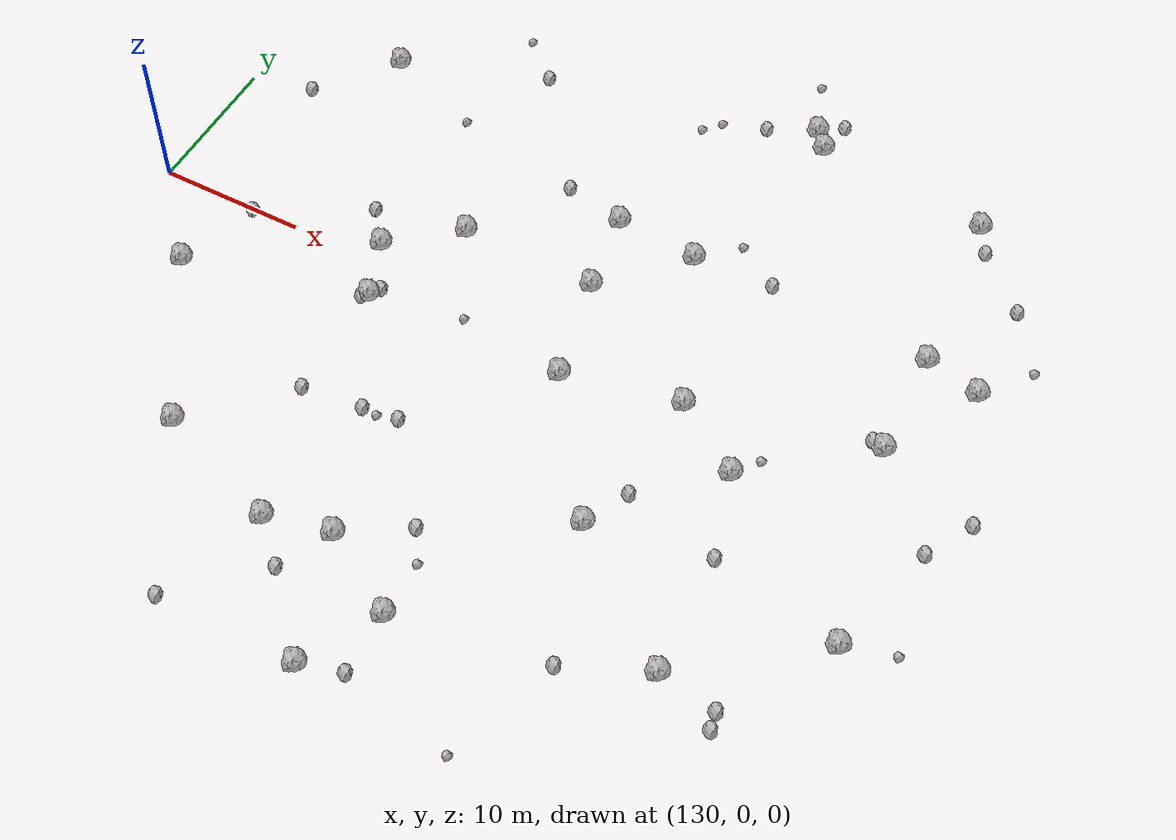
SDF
<sdf version="1.6">
 <world name="default">
  <include><uri>model://sun</uri></include>
  <model name="rock1_4_2">
   <include><uri>model://rock1</uri><pose>160.92388347625945 -2.235057176695552 0.5 0 0 0</pose></include>
  </model>
  <model name="rock1_4_3">
   <include><uri>model://rock1</uri><pose>175.7854021667193 -17.68121353090826 0.5 0 0 0</pose></include>
  </model>
  <model name="rock1_4_4">
   <include><uri>model://rock1</uri><pose>167.36158966789168 22.654782264727643 0.5 0 0 0</pose></include>
  </model>
  <model name="rock1_4_5">
   <include><uri>model://rock1</uri><pose>142.10556732586429 -16.43734119213522 0.5 0 0 0</pose></include>
  </model>
  <model name="rock1_4_6">
   <include><uri>model://rock1</uri><pose>138.1731054215319 16.05132467466558 0.5 0 0 0</pose></include>
  </model>
  <model name="rock1_4_7">
   <include><uri>model://rock1</uri><pose>164.04678378095196 9.972430998390045 0.5 0 0 0</pose></include>
  </model>
  <model name="rock1_4_8">
   <include><uri>model://rock1</uri><pose>179.20567268419182 21.204620219653457 0.5 0 0 0</pose></include>
  </model>
  <model name="rock1_4_9">
   <include><uri>model://rock1</uri><pose>180.40728581716084 9.49365174478632 0.5 0 0 0</pose></include>
  </model>
  <model name="rock1_4_10">
   <include><uri>model://rock1</uri><pose>184.11283402000393 8.584604280468497 0.5 0 0 0</pose></include>
  </model>
  <model name="rock1_4_11">
   <include><uri>model://rock1</uri><pose>166.344455248943 23.939586214503336 0.5 0 0 0</pose></include>
  </model>
  <model name="rock1_4_12">
   <include><uri>model://rock1</uri><pose>147.29933760362294 -2.5629139702935113 0.5 0 0 0</pose></include>
  </model>
  <model name="rock1_4_13">
   <include><uri>model://rock1</uri><pose>145.74637270964192 1.4063778484667004 0.5 0 0 0</pose></include>
  </model>
  <model name="rock1_4_14">
   <include><uri>model://rock1</uri><pose>155.0321290223491 -18.628599647751493 0.5 0 0 0</pose></include>
  </model>
  <model name="rock1_4_15">
   <include><uri>model://rock1</uri><pose>168.67982520112136 -0.6157392816802449 0.5 0 0 0</pose></include>
  </model>
  <model name="rock1_4_16">
   <include><uri>model://rock1</uri><pose>183.87354362703576 -11.349589590202562 0.5 0 0 0</pose></include>
  </model>
  <model name="rock1_4_17">
   <include><uri>model://rock1</uri><pose>159.29429851280292 4.877728305853488 0.5 0 0 0</pose></include>
  </model>
  <model name="rock1_4_18">
   <include><uri>model://rock1</uri><pose>135.18363740206706 -5.789821272253139 0.5 0 0 0</pose></include>
  </model>
  <model name="rock1_4_19">
   <include><uri>model://rock1</uri><pose>180.72183377372394 2.122701192173608 0.5 0 0 0</pose></include>
  </model>
  <model name="rock1_4_20">
   <include><uri>model://rock1</uri><pose>150.00911974185877 4.987735997559 0.5 0 0 0</pose></include>
  </model>
  <model name="rock1_4_21">
   <include><uri>model://rock1</uri><pose>160.47621813657418 -21.818189962546697 0.5 0 0 0</pose></include>
  </model>
  <model name="rock1_4_22">
   <include><uri>model://rock1</uri><pose>157.81440991078964 -26.845045854726084 0.5 0 0 0</pose></include>
  </model>
  <model name="rock1_4_23">
   <include><uri>model://rock1</uri><pose>150.74159192455488 -19.63574233386165 0.5 0 0 0</pose></include>
  </model>
  <model name="rock1_4_24">
   <include><uri>model://rock1</uri><pose>158.3833800793467 10.446127621841754 0.5 0 0 0</pose></include>
  </model>
  <model name="rock1_4_25">
   <include><uri>model://rock1</uri><pose>173.44958490595587 -3.816527661312602 0.5 0 0 0</pose></include>
  </model>
  <model name="rock1_4_26">
   <include><uri>model://rock1</uri><pose>167.42514510046647 -11.054414127443653 0.5 0 0 0</pose></include>
  </model>
  <model name="rock2_4_0">
   <include><uri>model://rock2</uri><pose>136.86993934336712 -0.19157005671754135 0.3 0 0 0</pose></include>
  </model>
  <model name="rock2_4_1">
   <include><uri>model://rock2</uri><pose>160.6179880788795 -26.026177200047055 0.3 0 0 0</pose></include>
  </model>
  <model name="rock2_4_2">
   <include><uri>model://rock2</uri><pose>187.47836181642242 -0.4019092979402714 0.3 0 0 0</pose></include>
  </model>
  <model name="rock2_4_3">
   <include><uri>model://rock2</uri><pose>169.4825574780046 10.253619589763865 0.3 0 0 0</pose></include>
  </model>
  <model name="rock2_4_4">
   <include><uri>model://rock2</uri><pose>163.26627778649765 22.42830686490796 0.3 0 0 0</pose></include>
  </model>
  <model name="rock2_4_5">
   <include><uri>model://rock2</uri><pose>180.3284657595175 19.256946269366125 0.3 0 0 0</pose></include>
  </model>
  <model name="rock2_4_6">
   <include><uri>model://rock2</uri><pose>148.05145456578563 19.558084192469288 0.3 0 0 0</pose></include>
  </model>
  <model name="rock2_4_7">
   <include><uri>model://rock2</uri><pose>153.38157356781758 -22.139061994363374 0.3 0 0 0</pose></include>
  </model>
  <model name="rock2_4_8">
   <include><uri>model://rock2</uri><pose>154.09734510214577 -9.956826600415312 0.3 0 0 0</pose></include>
  </model>
  <model name="rock2_4_9">
   <include><uri>model://rock2</uri><pose>183.91885043727925 15.675171330783812 0.3 0 0 0</pose></include>
  </model>
  <model name="rock2_4_10">
   <include><uri>model://rock2</uri><pose>147.64767903200038 -10.71922381218019 0.3 0 0 0</pose></include>
  </model>
  <model name="rock2_4_11">
   <include><uri>model://rock2</uri><pose>168.86028171028644 -8.036097745389512 0.3 0 0 0</pose></include>
  </model>
  <model name="rock2_4_12">
   <include><uri>model://rock2</uri><pose>147.78877138309397 -1.8378948205205319 0.3 0 0 0</pose></include>
  </model>
  <model name="rock2_4_13">
   <include><uri>model://rock2</uri><pose>143.92771152628063 3.678506631162982 0.3 0 0 0</pose></include>
  </model>
  <model name="rock2_4_14">
   <include><uri>model://rock2</uri><pose>151.7262436045735 -10.26160825958435 0.3 0 0 0</pose></include>
  </model>
  <model name="rock2_4_15">
   <include><uri>model://rock2</uri><pose>170.5283489525319 -20.08746450325127 0.3 0 0 0</pose></include>
  </model>
  <model name="rock2_4_16">
   <include><uri>model://rock2</uri><pose>146.97386400636302 -2.9080455104388427 0.3 0 0 0</pose></include>
  </model>
  <model name="rock2_4_17">
   <include><uri>model://rock2</uri><pose>185.78965200093887 -3.5610211694514327 0.3 0 0 0</pose></include>
  </model>
  <model name="rock2_4_18">
   <include><uri>model://rock2</uri><pose>159.10051117682602 -16.050044236324354 0.3 0 0 0</pose></include>
  </model>
  <model name="rock2_4_19">
   <include><uri>model://rock2</uri><pose>179.6830938996111 -18.309554344358027 0.3 0 0 0</pose></include>
  </model>
  <model name="rock2_4_20">
   <include><uri>model://rock2</uri><pose>175.26103504432297 -9.586335223610579 0.3 0 0 0</pose></include>
  </model>
  <model name="rock2_4_21">
   <include><uri>model://rock2</uri><pose>148.45978179291907 -26.97921540825849 0.3 0 0 0</pose></include>
  </model>
  <model name="rock2_4_22">
   <include><uri>model://rock2</uri><pose>179.92339192270282 -19.456876673028553 0.3 0 0 0</pose></include>
  </model>
  <model name="rock2_4_23">
   <include><uri>model://rock2</uri><pose>167.85568266370996 25.02791312075192 0.3 0 0 0</pose></include>
  </model>
  <model name="rock2_4_24">
   <include><uri>model://rock2</uri><pose>154.20313366860867 11.39342719398865 0.3 0 0 0</pose></include>
  </model>
  <model name="rock2_4_25">
   <include><uri>model://rock2</uri><pose>179.9209299318972 2.3324869642430883 0.3 0 0 0</pose></include>
  </model>
  <model name="rock2_4_26">
   <include><uri>model://rock2</uri><pose>134.24633847428572 10.87671301349971 0.3 0 0 0</pose></include>
  </model>
  <model name="rock3_4_0">
   <include><uri>model://rock3</uri><pose>174.67186173654443 -2.2292034591888985 0.2 0 0 0</pose></include>
  </model>
  <model name="rock3_4_1">
   <include><uri>model://rock3</uri><pose>159.40874311573398 20.312312879219213 0.2 0 0 0</pose></include>
  </model>
  <model name="rock3_4_2">
   <include><uri>model://rock3</uri><pose>145.08705972604355 13.294960701662937 0.2 0 0 0</pose></include>
  </model>
  <model name="rock3_4_3">
   <include><uri>model://rock3</uri><pose>160.38830537198677 21.436053687866128 0.2 0 0 0</pose></include>
  </model>
  <model name="rock3_4_4">
   <include><uri>model://rock3</uri><pose>168.11940152022154 -27.631518640030045 0.2 0 0 0</pose></include>
  </model>
  <model name="rock3_4_5">
   <include><uri>model://rock3</uri><pose>145.22295306713414 22.12353028941601 0.2 0 0 0</pose></include>
  </model>
  <model name="rock3_4_6">
   <include><uri>model://rock3</uri><pose>164.873902116723 27.703890350799142 0.2 0 0 0</pose></include>
  </model>
  <model name="rock3_4_7">
   <include><uri>model://rock3</uri><pose>187.10427922128957 -10.439134889593756 0.2 0 0 0</pose></include>
  </model>
  <model name="rock3_4_8">
   <include><uri>model://rock3</uri><pose>186.5927622123556 11.650554026971427 0.2 0 0 0</pose></include>
  </model>
  <model name="rock3_4_9">
   <include><uri>model://rock3</uri><pose>153.5952257928131 -1.4170401975257931 0.2 0 0 0</pose></include>
  </model>
  <model name="rock3_4_10">
   <include><uri>model://rock3</uri><pose>152.72881494090763 -10.338522268469713 0.2 0 0 0</pose></include>
  </model>
  <model name="rock3_4_11">
   <include><uri>model://rock3</uri><pose>160.41324631724993 -18.131323243987932 0.2 0 0 0</pose></include>
  </model>
  <model name="rock3_4_12">
   <include><uri>model://rock3</uri><pose>166.4271698962075 12.264071123341267 0.2 0 0 0</pose></include>
  </model>
 </world>
</sdf>
